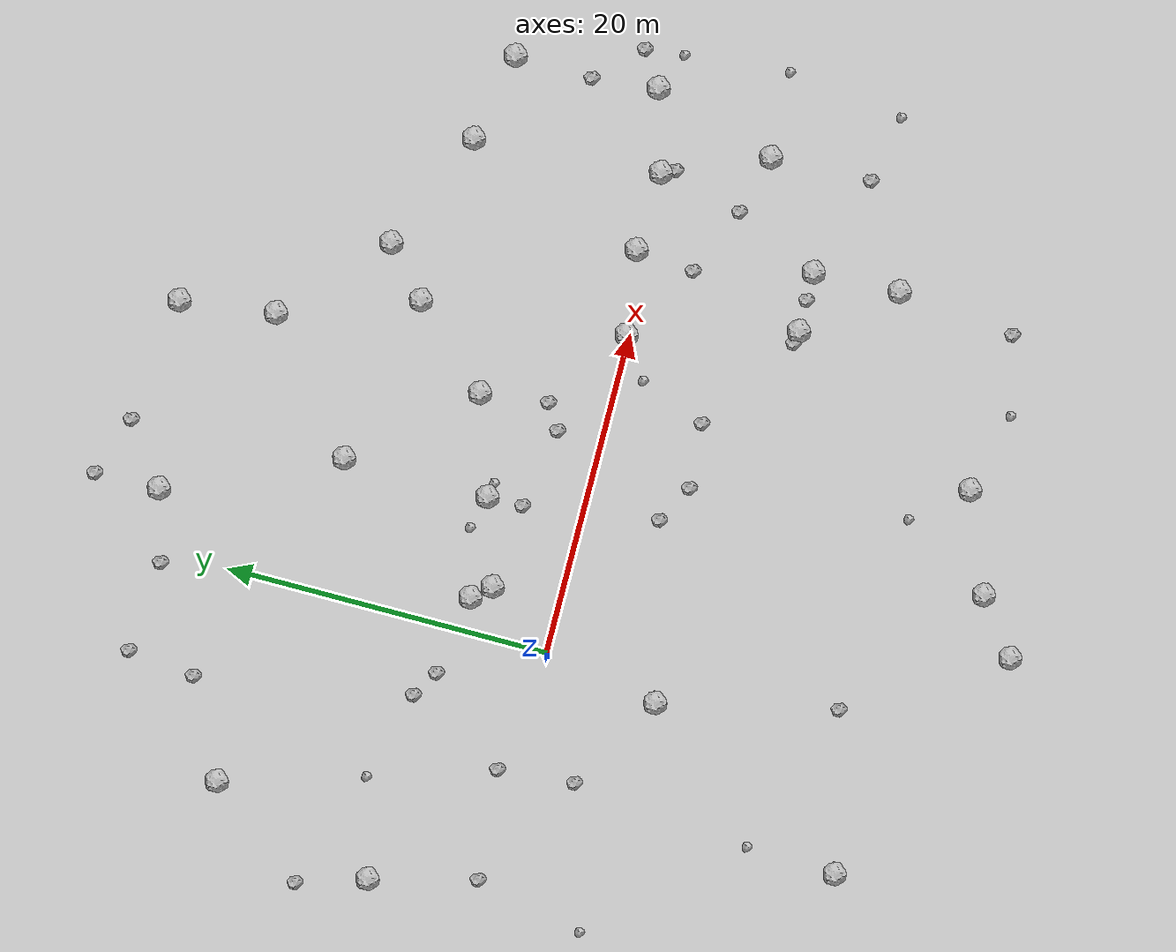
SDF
<sdf version="1.6">
 <world name="default">
  <include><uri>model://custom_ground</uri></include>
  <include><uri>model://sun</uri></include>
  <model name="rock1_0_0">
   <include><uri>model://rock1</uri><pose>29.081621029015153 12.22818206252078 0.5 0 0 0</pose></include>
  </model>
  <model name="rock1_0_1">
   <include><uri>model://rock1</uri><pose>25.078372861331758 0.9811334057170455 0.5 0 0 0</pose></include>
  </model>
  <model name="rock1_0_2">
   <include><uri>model://rock1</uri><pose>8.351612878462628 14.881337318350361 0.5 0 0 0</pose></include>
  </model>
  <model name="rock1_0_3">
   <include><uri>model://rock1</uri><pose>19.942775597987428 0.25577214342927235 0.5 0 0 0</pose></include>
  </model>
  <model name="rock1_0_4">
   <include><uri>model://rock1</uri><pose>6.919115461972062 -27.207298631161333 0.5 0 0 0</pose></include>
  </model>
  <model name="rock1_0_5">
   <include><uri>model://rock1</uri><pose>29.961421123975676 0.7552967031441185 0.5 0 0 0</pose></include>
  </model>
  <model name="rock1_0_6">
   <include><uri>model://rock1</uri><pose>26.479028678506197 -9.737241466195051 0.5 0 0 0</pose></include>
  </model>
  <model name="rock1_0_7">
   <include><uri>model://rock1</uri><pose>15.057675322480762 26.972359469598402 0.5 0 0 0</pose></include>
  </model>
  <model name="rock1_0_8">
   <include><uri>model://rock1</uri><pose>26.673031978240928 -15.072823608946068 0.5 0 0 0</pose></include>
  </model>
  <model name="rock1_0_9">
   <include><uri>model://rock1</uri><pose>-15.928490123794079 7.007493033703973 0.5 0 0 0</pose></include>
  </model>
  <model name="rock1_0_10">
   <include><uri>model://rock1</uri><pose>-1.1889368436991177 -7.118680778622085 0.5 0 0 0</pose></include>
  </model>
  <model name="rock1_0_11">
   <include><uri>model://rock1</uri><pose>-8.434418131879223 -20.270425423145923 0.5 0 0 0</pose></include>
  </model>
  <model name="rock1_0_12">
   <include><uri>model://rock1</uri><pose>10.20294117969009 -24.696303443367718 0.5 0 0 0</pose></include>
  </model>
  <model name="rock1_0_13">
   <include><uri>model://rock1</uri><pose>34.5809929072856 11.064235645921578 0.5 0 0 0</pose></include>
  </model>
  <model name="rock1_0_14">
   <include><uri>model://rock1</uri><pose>2.142211832747684 5.335646407980043 0.5 0 0 0</pose></include>
  </model>
  <model name="rock1_0_15">
   <include><uri>model://rock1</uri><pose>3.725763168986976 25.26611736636203 0.5 0 0 0</pose></include>
  </model>
  <model name="rock1_0_16">
   <include><uri>model://rock1</uri><pose>21.703837790536497 15.44638809882131 0.5 0 0 0</pose></include>
  </model>
  <model name="rock1_0_17">
   <include><uri>model://rock1</uri><pose>16.144880785353713 -22.269619861631828 0.5 0 0 0</pose></include>
  </model>
  <model name="rock1_0_18">
   <include><uri>model://rock1</uri><pose>18.795874885043716 12.834843732447581 0.5 0 0 0</pose></include>
  </model>
  <model name="rock1_0_19">
   <include><uri>model://rock1</uri><pose>22.79785963820315 -9.787180965971668 0.5 0 0 0</pose></include>
  </model>
  <model name="rock1_0_20">
   <include><uri>model://rock1</uri><pose>14.271460780438517 7.934865588549265 0.5 0 0 0</pose></include>
  </model>
  <model name="rock1_0_21">
   <include><uri>model://rock1</uri><pose>3.114869062041251 4.2066121159513585 0.5 0 0 0</pose></include>
  </model>
  <model name="rock1_0_22">
   <include><uri>model://rock1</uri><pose>32.54616762144239 -5.463079574977598 0.5 0 0 0</pose></include>
  </model>
  <model name="rock1_0_23">
   <include><uri>model://rock1</uri><pose>34.882233140873524 2.1869945071388983 0.5 0 0 0</pose></include>
  </model>
  <model name="rock1_0_24">
   <include><uri>model://rock1</uri><pose>8.298546748713857 5.898650072416061 0.5 0 0 0</pose></include>
  </model>
  <model name="rock1_0_25">
   <include><uri>model://rock1</uri><pose>15.816017510253488 21.12326657239864 0.5 0 0 0</pose></include>
  </model>
  <model name="rock1_0_26">
   <include><uri>model://rock1</uri><pose>-12.52490745590868 17.35295892488213 0.5 0 0 0</pose></include>
  </model>
  <model name="rock2_0_0">
   <include><uri>model://rock2</uri><pose>34.41621669620248 6.254489187675922 0.3 0 0 0</pose></include>
  </model>
  <model name="rock2_0_1">
   <include><uri>model://rock2</uri><pose>-2.842645304881973 6.170340435482572 0.3 0 0 0</pose></include>
  </model>
  <model name="rock2_0_2">
   <include><uri>model://rock2</uri><pose>24.676358698760893 -2.6543679745849715 0.3 0 0 0</pose></include>
  </model>
  <model name="rock2_0_3">
   <include><uri>model://rock2</uri><pose>9.556190837211428 -4.531830047992866 0.3 0 0 0</pose></include>
  </model>
  <model name="rock2_0_4">
   <include><uri>model://rock2</uri><pose>1.2229820305742933 -17.986668934524197 0.3 0 0 0</pose></include>
  </model>
  <model name="rock2_0_5">
   <include><uri>model://rock2</uri><pose>-17.29835947594768 11.223673491608096 0.3 0 0 0</pose></include>
  </model>
  <model name="rock2_0_6">
   <include><uri>model://rock2</uri><pose>15.871571860546965 -5.526277379820296 0.3 0 0 0</pose></include>
  </model>
  <model name="rock2_0_7">
   <include><uri>model://rock2</uri><pose>-6.268826463034863 24.55281934792604 0.3 0 0 0</pose></include>
  </model>
  <model name="rock2_0_8">
   <include><uri>model://rock2</uri><pose>28.85784267212466 -4.4621228069620535 0.3 0 0 0</pose></include>
  </model>
  <model name="rock2_0_9">
   <include><uri>model://rock2</uri><pose>7.312379226973512 27.978800065339136 0.3 0 0 0</pose></include>
  </model>
  <model name="rock2_0_10">
   <include><uri>model://rock2</uri><pose>32.71306723736778 -11.689970238734567 0.3 0 0 0</pose></include>
  </model>
  <model name="rock2_0_11">
   <include><uri>model://rock2</uri><pose>24.720617035462993 -9.751240177944965 0.3 0 0 0</pose></include>
  </model>
  <model name="rock2_0_12">
   <include><uri>model://rock2</uri><pose>-7.557690700804368 1.098475750096025 0.3 0 0 0</pose></include>
  </model>
  <model name="rock2_0_13">
   <include><uri>model://rock2</uri><pose>3.6103774981822596 29.291648956069963 0.3 0 0 0</pose></include>
  </model>
  <model name="rock2_0_14">
   <include><uri>model://rock2</uri><pose>-7.16010944893439 -3.620653108596951 0.3 0 0 0</pose></include>
  </model>
  <model name="rock2_0_15">
   <include><uri>model://rock2</uri><pose>13.22844065797711 2.8136645163629623 0.3 0 0 0</pose></include>
  </model>
  <model name="rock2_0_16">
   <include><uri>model://rock2</uri><pose>25.860868726892974 -22.363631453234127 0.3 0 0 0</pose></include>
  </model>
  <model name="rock2_0_17">
   <include><uri>model://rock2</uri><pose>21.992816016164234 -9.659033878930263 0.3 0 0 0</pose></include>
  </model>
  <model name="rock2_0_18">
   <include><uri>model://rock2</uri><pose>-4.486492667120476 7.183597163444979 0.3 0 0 0</pose></include>
  </model>
  <model name="rock2_0_19">
   <include><uri>model://rock2</uri><pose>14.74008003567954 3.7875767180119553 0.3 0 0 0</pose></include>
  </model>
  <model name="rock2_0_20">
   <include><uri>model://rock2</uri><pose>30.299569381547848 -0.07913624996933066 0.3 0 0 0</pose></include>
  </model>
  <model name="rock2_0_21">
   <include><uri>model://rock2</uri><pose>11.893167813849736 -5.795463806909826 0.3 0 0 0</pose></include>
  </model>
  <model name="rock2_0_22">
   <include><uri>model://rock2</uri><pose>-14.321160269497765 0.5318142691005825 0.3 0 0 0</pose></include>
  </model>
  <model name="rock2_0_23">
   <include><uri>model://rock2</uri><pose>-6.765216850375801 20.376050115755106 0.3 0 0 0</pose></include>
  </model>
  <model name="rock2_0_24">
   <include><uri>model://rock2</uri><pose>36.93629829131663 3.5834461498714703 0.3 0 0 0</pose></include>
  </model>
  <model name="rock2_0_25">
   <include><uri>model://rock2</uri><pose>8.285159011439596 3.7138689797043867 0.3 0 0 0</pose></include>
  </model>
  <model name="rock2_0_26">
   <include><uri>model://rock2</uri><pose>-0.6282125121356437 24.047545141635794 0.3 0 0 0</pose></include>
  </model>
  <model name="rock3_0_0">
   <include><uri>model://rock3</uri><pose>21.047706153313875 -23.547836732799453 0.2 0 0 0</pose></include>
  </model>
  <model name="rock3_0_1">
   <include><uri>model://rock3</uri><pose>-8.27502655753473 -14.745962313724661 0.2 0 0 0</pose></include>
  </model>
  <model name="rock3_0_2">
   <include><uri>model://rock3</uri><pose>17.4423855349373 -1.4590135129211461 0.2 0 0 0</pose></include>
  </model>
  <model name="rock3_0_3">
   <include><uri>model://rock3</uri><pose>-10.02114043054338 8.642002045901378 0.2 0 0 0</pose></include>
  </model>
  <model name="rock3_0_4">
   <include><uri>model://rock3</uri><pose>36.86682555258934 -12.521829354237141 0.2 0 0 0</pose></include>
  </model>
  <model name="rock3_0_5">
   <include><uri>model://rock3</uri><pose>37.797629836423 -5.309226228796099 0.2 0 0 0</pose></include>
  </model>
  <model name="rock3_0_6">
   <include><uri>model://rock3</uri><pose>9.135183366724352 5.682693718925748 0.2 0 0 0</pose></include>
  </model>
  <model name="rock3_0_7">
   <include><uri>model://rock3</uri><pose>13.412986879703958 -19.166847201882078 0.2 0 0 0</pose></include>
  </model>
  <model name="rock3_0_8">
   <include><uri>model://rock3</uri><pose>-15.86298047963557 -6.252895686582487 0.2 0 0 0</pose></include>
  </model>
  <model name="rock3_0_9">
   <include><uri>model://rock3</uri><pose>37.17915987529038 1.1389220013471508 0.2 0 0 0</pose></include>
  </model>
  <model name="rock3_0_10">
   <include><uri>model://rock3</uri><pose>6.172971856030035 6.411225360386993 0.2 0 0 0</pose></include>
  </model>
 </world>
</sdf>
